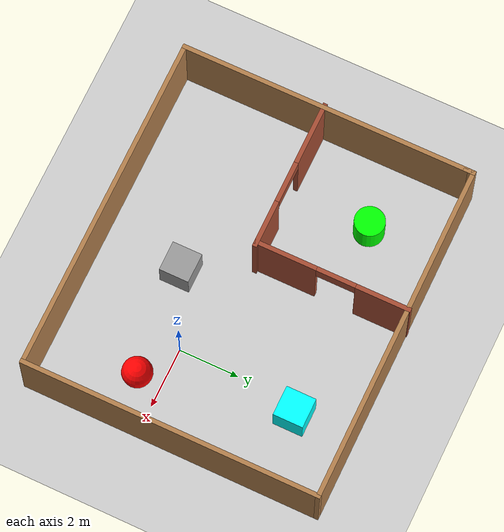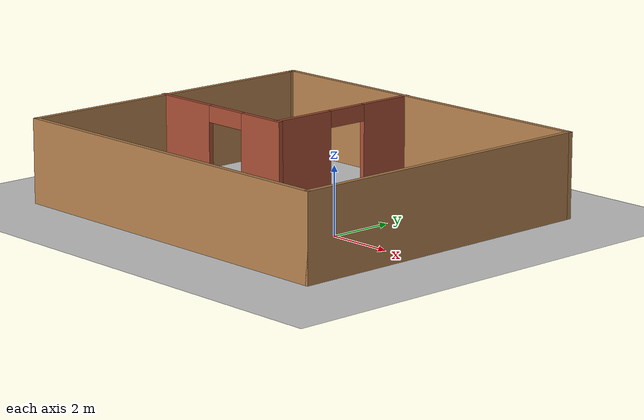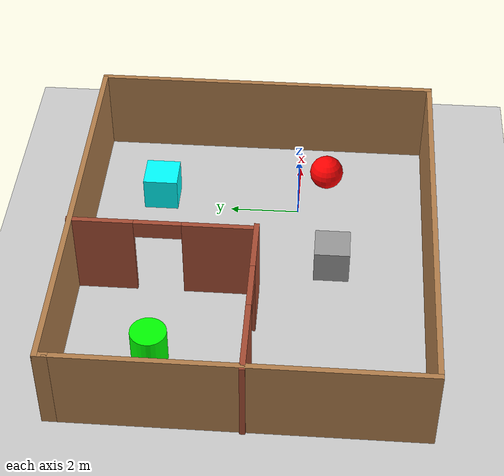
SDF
<sdf version="1.6">
 <world name="default">
  <light name="sun" type="directional">
   <pose>0 0 10 0 -0 0</pose>
   <diffuse>0.8 0.8 0.8 1</diffuse>
   <specular>0.2 0.2 0.2 1</specular>
   <attenuation>
    <range>1000</range>
    <constant>0.9</constant>
    <linear>0.01</linear>
    <quadratic>0.001</quadratic>
   </attenuation>
   <direction>-0.5 0.1 -0.9</direction>
  </light>
  <model name="ground_plane">
   <static>1</static>
   <link name="link">
    <collision name="collision">
     <geometry><plane><normal>0 0 1</normal><size>100 100</size></plane></geometry>
     <surface>
      <contact><collide_bitmask>65535</collide_bitmask></contact>
      <friction><ode><mu>100</mu><mu2>50</mu2></ode></friction>
     </surface>
    </collision>
    <visual name="visual">
     <cast_shadows>0</cast_shadows>
     <geometry><plane><normal>0 0 1</normal><size>100 100</size></plane></geometry>
     <material>
      <script><uri>file://media/materials/scripts/gazebo.material</uri><name>Gazebo/Grey</name></script>
     </material>
    </visual>
   </link>
  </model>
  <gravity>0 0 -9.8</gravity>
  <magnetic_field>6e-06 2.3e-05 -4.2e-05</magnetic_field>
  <atmosphere type="adiabatic"/>
  <physics name="default_physics" default="0" type="ode">
   <max_step_size>0.001</max_step_size>
   <real_time_factor>1</real_time_factor>
   <real_time_update_rate>1000</real_time_update_rate>
  </physics>
  <scene><ambient>0.4 0.4 0.4 1</ambient><background>0.7 0.7 0.7 1</background><shadows>1</shadows></scene>
  <spherical_coordinates>
   <surface_model>EARTH_WGS84</surface_model>
   <latitude_deg>0</latitude_deg>
   <longitude_deg>0</longitude_deg>
   <elevation>0</elevation>
   <heading_deg>0</heading_deg>
  </spherical_coordinates>
  <model name="UdacityWorldSLAM">
   <pose>-2.69032 1.1701 0 0 -0 0</pose>
   <link name="Wall_11">
    <collision name="Wall_11_Collision">
     <geometry><box><size>9.75 0.15 2.5</size></box></geometry>
     <pose>0 0 1.25 0 -0 0</pose>
    </collision>
    <visual name="Wall_11_Visual">
     <pose>0 0 1.25 0 -0 0</pose>
     <geometry><box><size>9.75 0.15 2.5</size></box></geometry>
     <material>
      <script><uri>file://media/materials/scripts/gazebo.material</uri><name>Gazebo/Wood</name></script>
      <ambient>1 1 1 1</ambient>
     </material>
     <meta><layer>0</layer></meta>
    </visual>
    <pose>-5.64538 -0.136879 0 0 0 -1.5708</pose>
   </link>
   <link name="Wall_12">
    <collision name="Wall_12_Collision">
     <geometry><box><size>11.5 0.15 2.5</size></box></geometry>
     <pose>0 0 1.25 0 -0 0</pose>
    </collision>
    <visual name="Wall_12_Visual">
     <pose>0 0 1.25 0 -0 0</pose>
     <geometry><box><size>11.5 0.15 2.5</size></box></geometry>
     <material>
      <script><uri>file://media/materials/scripts/gazebo.material</uri><name>Gazebo/Wood</name></script>
      <ambient>1 1 1 1</ambient>
     </material>
     <meta><layer>0</layer></meta>
    </visual>
    <pose>0.029622 -4.93688 0 0 -0 0</pose>
   </link>
   <link name="Wall_13">
    <collision name="Wall_13_Collision">
     <geometry><box><size>10 0.15 2.5</size></box></geometry>
     <pose>0 0 1.25 0 -0 0</pose>
    </collision>
    <visual name="Wall_13_Visual">
     <pose>0 0 1.25 0 -0 0</pose>
     <geometry><box><size>10 0.15 2.5</size></box></geometry>
     <material>
      <script><uri>file://media/materials/scripts/gazebo.material</uri><name>Gazebo/Wood</name></script>
      <ambient>1 1 1 1</ambient>
     </material>
     <meta><layer>0</layer></meta>
    </visual>
    <pose>5.70462 -0.011879 0 0 -0 1.5708</pose>
   </link>
   <link name="Wall_14">
    <collision name="Wall_14_Collision">
     <geometry><box><size>11.5 0.15 2.5</size></box></geometry>
     <pose>0 0 1.25 0 -0 0</pose>
    </collision>
    <visual name="Wall_14_Visual">
     <pose>0 0 1.25 0 -0 0</pose>
     <geometry><box><size>11.5 0.15 2.5</size></box></geometry>
     <material>
      <script><uri>file://media/materials/scripts/gazebo.material</uri><name>Gazebo/Wood</name></script>
      <ambient>1 1 1 1</ambient>
     </material>
     <meta><layer>0</layer></meta>
    </visual>
    <pose>0.029622 4.91312 0 0 -0 3.14159</pose>
   </link>
   <link name="Wall_15">
    <collision name="Wall_15_Collision">
     <geometry><box><size>0.4 0.15 2.5</size></box></geometry>
     <pose>0 0 1.25 0 -0 0</pose>
    </collision>
    <visual name="Wall_15_Visual">
     <pose>0 0 1.25 0 -0 0</pose>
     <geometry><box><size>0.4 0.15 2.5</size></box></geometry>
     <material>
      <script><uri>file://media/materials/scripts/gazebo.material</uri><name>Gazebo/Wood</name></script>
      <ambient>1 1 1 1</ambient>
     </material>
     <meta><layer>0</layer></meta>
    </visual>
    <pose>-5.64538 4.78812 0 0 0 -1.5708</pose>
   </link>
   <link name="Wall_17">
    <pose>-0.76337 2.38688 0 0 0 -1.5708</pose>
    <visual name="Wall_17_Visual_0">
     <pose>-1.70606 0 1.25 0 -0 0</pose>
     <geometry><box><size>1.83787 0.15 2.5</size></box></geometry>
     <material>
      <script><uri>file://media/materials/scripts/gazebo.material</uri><name>Gazebo/Bricks</name></script>
      <ambient>1 1 1 1</ambient>
     </material>
     <meta><layer>0</layer></meta>
    </visual>
    <collision name="Wall_17_Collision_0">
     <geometry><box><size>1.83787 0.15 2.5</size></box></geometry>
     <pose>-1.70606 0 1.25 0 -0 0</pose>
    </collision>
    <visual name="Wall_17_Visual_1">
     <pose>1.57425 0 1.25 0 -0 0</pose>
     <geometry><box><size>2.10149 0.15 2.5</size></box></geometry>
     <material>
      <script><uri>file://media/materials/scripts/gazebo.material</uri><name>Gazebo/Bricks</name></script>
      <ambient>1 1 1 1</ambient>
     </material>
     <meta><layer>0</layer></meta>
    </visual>
    <collision name="Wall_17_Collision_1">
     <geometry><box><size>2.10149 0.15 2.5</size></box></geometry>
     <pose>1.57425 0 1.25 0 -0 0</pose>
    </collision>
    <visual name="Wall_17_Visual_2">
     <pose>-0.131809 0 2.25 0 -0 0</pose>
     <geometry><box><size>1.31064 0.15 0.5</size></box></geometry>
     <material>
      <script><uri>file://media/materials/scripts/gazebo.material</uri><name>Gazebo/Bricks</name></script>
      <ambient>1 1 1 1</ambient>
     </material>
     <meta><layer>0</layer></meta>
    </visual>
    <collision name="Wall_17_Collision_2">
     <geometry><box><size>1.31064 0.15 0.5</size></box></geometry>
     <pose>-0.131809 0 2.25 0 -0 0</pose>
    </collision>
   </link>
   <link name="Wall_18">
    <pose>-3.18837 -0.163121 0 0 -0 3.14159</pose>
    <visual name="Wall_18_Visual_0">
     <pose>-1.77982 0 1.25 0 -0 0</pose>
     <geometry><box><size>1.62286 0.15 2.5</size></box></geometry>
     <material>
      <script><uri>file://media/materials/scripts/gazebo.material</uri><name>Gazebo/Bricks</name></script>
      <ambient>1 1 1 1</ambient>
     </material>
     <meta><layer>0</layer></meta>
    </visual>
    <collision name="Wall_18_Collision_0">
     <geometry><box><size>1.62286 0.15 2.5</size></box></geometry>
     <pose>-1.77982 0 1.25 0 -0 0</pose>
    </collision>
    <visual name="Wall_18_Visual_1">
     <pose>1.51237 0 1.25 0 -0 0</pose>
     <geometry><box><size>2.15776 0.15 2.5</size></box></geometry>
     <material>
      <script><uri>file://media/materials/scripts/gazebo.material</uri><name>Gazebo/Bricks</name></script>
      <ambient>1 1 1 1</ambient>
     </material>
     <meta><layer>0</layer></meta>
    </visual>
    <collision name="Wall_18_Collision_1">
     <geometry><box><size>2.15776 0.15 2.5</size></box></geometry>
     <pose>1.51237 0 1.25 0 -0 0</pose>
    </collision>
    <visual name="Wall_18_Visual_2">
     <pose>-0.267452 0 2.25 0 -0 0</pose>
     <geometry><box><size>1.40189 0.15 0.5</size></box></geometry>
     <material>
      <script><uri>file://media/materials/scripts/gazebo.material</uri><name>Gazebo/Bricks</name></script>
      <ambient>1 1 1 1</ambient>
     </material>
     <meta><layer>0</layer></meta>
    </visual>
    <collision name="Wall_18_Collision_2">
     <geometry><box><size>1.40189 0.15 0.5</size></box></geometry>
     <pose>-0.267452 0 2.25 0 -0 0</pose>
    </collision>
   </link>
   <static>1</static>
  </model>
  <model name="model">
   <link name="link_0">
    <pose>-0.667525 -2.54387 0 0 -0 0</pose>
    <inertial>
     <mass>1</mass>
     <inertia>
      <ixx>0.166667</ixx>
      <ixy>0</ixy>
      <ixz>0</ixz>
      <iyy>0.166667</iyy>
      <iyz>0</iyz>
      <izz>0.166667</izz>
     </inertia>
    </inertial>
    <visual name="visual">
     <geometry><box><size>1 1 1</size></box></geometry>
     <material>
      <lighting>1</lighting>
      <script><uri>file://media/materials/scripts/gazebo.material</uri><name>Gazebo/Grey</name></script>
      <shader type="pixel"/>
      <ambient>0.3 0.3 0.3 1</ambient>
      <diffuse>0.7 0.7 0.7 1</diffuse>
      <specular>0.01 0.01 0.01 1</specular>
      <emissive>0 0 0 1</emissive>
     </material>
    </visual>
    <collision name="collision">
     <geometry><box><size>1 1 1</size></box></geometry>
     <surface>
      <friction>
       <ode><mu>1</mu><mu2>1</mu2><fdir1>0 0 0</fdir1><slip1>0</slip1><slip2>0</slip2></ode>
       <torsional>
        <coefficient>1</coefficient>
        <patch_radius>0</patch_radius>
        <surface_radius>0</surface_radius>
        <use_patch_radius>1</use_patch_radius>
        <ode><slip>0</slip></ode>
       </torsional>
      </friction>
      <bounce><restitution_coefficient>0</restitution_coefficient><threshold>1e+06</threshold></bounce>
      <contact>
       <collide_without_contact>0</collide_without_contact>
       <collide_without_contact_bitmask>1</collide_without_contact_bitmask>
       <collide_bitmask>1</collide_bitmask>
       <ode>
        <soft_cfm>0</soft_cfm>
        <soft_erp>0.2</soft_erp>
        <kp>1e+13</kp>
        <kd>1</kd>
        <max_vel>0.01</max_vel>
        <min_depth>0</min_depth>
       </ode>
       <bullet>
        <split_impulse>1</split_impulse>
        <split_impulse_penetration_threshold>-0.01</split_impulse_penetration_threshold>
        <soft_cfm>0</soft_cfm>
        <soft_erp>0.2</soft_erp>
        <kp>1e+13</kp>
        <kd>1</kd>
       </bullet>
      </contact>
     </surface>
    </collision>
   </link>
   <link name="link_1">
    <pose>2.06585 2.62417 0 0 -0 0</pose>
    <inertial>
     <mass>1</mass>
     <inertia>
      <ixx>0.166667</ixx>
      <ixy>0</ixy>
      <ixz>0</ixz>
      <iyy>0.166667</iyy>
      <iyz>0</iyz>
      <izz>0.166667</izz>
     </inertia>
    </inertial>
    <visual name="visual">
     <geometry><box><size>1 1 1</size></box></geometry>
     <material>
      <lighting>1</lighting>
      <script><uri>file://media/materials/scripts/gazebo.material</uri><name>Gazebo/Grey</name></script>
      <shader type="pixel"><normal_map>__default__</normal_map></shader>
      <ambient>0 1 1 1</ambient>
      <diffuse>0 1 1 1</diffuse>
      <specular>0 1 1 1</specular>
      <emissive>0 1 1 1</emissive>
     </material>
    </visual>
    <collision name="collision">
     <geometry><box><size>1 1 1</size></box></geometry>
     <surface>
      <friction>
       <ode><mu>1</mu><mu2>1</mu2><fdir1>0 0 0</fdir1><slip1>0</slip1><slip2>0</slip2></ode>
       <torsional>
        <coefficient>1</coefficient>
        <patch_radius>0</patch_radius>
        <surface_radius>0</surface_radius>
        <use_patch_radius>1</use_patch_radius>
        <ode><slip>0</slip></ode>
       </torsional>
      </friction>
      <bounce><restitution_coefficient>0</restitution_coefficient><threshold>1e+06</threshold></bounce>
      <contact>
       <collide_without_contact>0</collide_without_contact>
       <collide_without_contact_bitmask>1</collide_without_contact_bitmask>
       <collide_bitmask>1</collide_bitmask>
       <ode>
        <soft_cfm>0</soft_cfm>
        <soft_erp>0.2</soft_erp>
        <kp>1e+13</kp>
        <kd>1</kd>
        <max_vel>0.01</max_vel>
        <min_depth>0</min_depth>
       </ode>
       <bullet>
        <split_impulse>1</split_impulse>
        <split_impulse_penetration_threshold>-0.01</split_impulse_penetration_threshold>
        <soft_cfm>0</soft_cfm>
        <soft_erp>0.2</soft_erp>
        <kp>1e+13</kp>
        <kd>1</kd>
       </bullet>
      </contact>
     </surface>
    </collision>
   </link>
   <link name="link_2">
    <pose>-4.38159 2.20139 0 0 -0 0</pose>
    <inertial>
     <mass>1</mass>
     <inertia><ixx>0.145833</ixx><ixy>0</ixy><ixz>0</ixz><iyy>0.145833</iyy><iyz>0</iyz><izz>0.125</izz></inertia>
    </inertial>
    <visual name="visual">
     <geometry><cylinder><radius>0.5</radius><length>1</length></cylinder></geometry>
     <material>
      <lighting>1</lighting>
      <script><uri>file://media/materials/scripts/gazebo.material</uri><name>Gazebo/Grey</name></script>
      <shader type="pixel"><normal_map>__default__</normal_map></shader>
      <ambient>0 1 0 1</ambient>
      <diffuse>0 1 0 1</diffuse>
      <specular>0 1 0 1</specular>
      <emissive>0 1 0 1</emissive>
     </material>
    </visual>
    <collision name="collision">
     <geometry><cylinder><radius>0.5</radius><length>1</length></cylinder></geometry>
     <surface>
      <friction>
       <ode><mu>1</mu><mu2>1</mu2><fdir1>0 0 0</fdir1><slip1>0</slip1><slip2>0</slip2></ode>
       <torsional>
        <coefficient>1</coefficient>
        <patch_radius>0</patch_radius>
        <surface_radius>0</surface_radius>
        <use_patch_radius>1</use_patch_radius>
        <ode><slip>0</slip></ode>
       </torsional>
      </friction>
      <bounce><restitution_coefficient>0</restitution_coefficient><threshold>1e+06</threshold></bounce>
      <contact>
       <collide_without_contact>0</collide_without_contact>
       <collide_without_contact_bitmask>1</collide_without_contact_bitmask>
       <collide_bitmask>1</collide_bitmask>
       <ode>
        <soft_cfm>0</soft_cfm>
        <soft_erp>0.2</soft_erp>
        <kp>1e+13</kp>
        <kd>1</kd>
        <max_vel>0.01</max_vel>
        <min_depth>0</min_depth>
       </ode>
       <bullet>
        <split_impulse>1</split_impulse>
        <split_impulse_penetration_threshold>-0.01</split_impulse_penetration_threshold>
        <soft_cfm>0</soft_cfm>
        <soft_erp>0.2</soft_erp>
        <kp>1e+13</kp>
        <kd>1</kd>
       </bullet>
      </contact>
     </surface>
    </collision>
   </link>
   <link name="link_4">
    <pose>2.98327 -2.28168 0 0 -0 0</pose>
    <inertial>
     <mass>1</mass>
     <inertia><ixx>0.1</ixx><ixy>0</ixy><ixz>0</ixz><iyy>0.1</iyy><iyz>0</iyz><izz>0.1</izz></inertia>
    </inertial>
    <visual name="visual">
     <geometry><sphere><radius>0.5</radius></sphere></geometry>
     <material>
      <lighting>1</lighting>
      <script><uri>file://media/materials/scripts/gazebo.material</uri><name>Gazebo/Grey</name></script>
      <shader type="pixel"><normal_map>__default__</normal_map></shader>
      <ambient>1 0 0 1</ambient>
      <diffuse>1 0 0 1</diffuse>
      <specular>1 0 0 1</specular>
      <emissive>1 0 0 1</emissive>
     </material>
    </visual>
    <collision name="collision">
     <geometry><sphere><radius>0.5</radius></sphere></geometry>
     <surface>
      <friction>
       <ode><mu>1</mu><mu2>1</mu2><fdir1>0 0 0</fdir1><slip1>0</slip1><slip2>0</slip2></ode>
       <torsional>
        <coefficient>1</coefficient>
        <patch_radius>0</patch_radius>
        <surface_radius>0</surface_radius>
        <use_patch_radius>1</use_patch_radius>
        <ode><slip>0</slip></ode>
       </torsional>
      </friction>
      <bounce><restitution_coefficient>0</restitution_coefficient><threshold>1e+06</threshold></bounce>
      <contact>
       <collide_without_contact>0</collide_without_contact>
       <collide_without_contact_bitmask>1</collide_without_contact_bitmask>
       <collide_bitmask>1</collide_bitmask>
       <ode>
        <soft_cfm>0</soft_cfm>
        <soft_erp>0.2</soft_erp>
        <kp>1e+13</kp>
        <kd>1</kd>
        <max_vel>0.01</max_vel>
        <min_depth>0</min_depth>
       </ode>
       <bullet>
        <split_impulse>1</split_impulse>
        <split_impulse_penetration_threshold>-0.01</split_impulse_penetration_threshold>
        <soft_cfm>0</soft_cfm>
        <soft_erp>0.2</soft_erp>
        <kp>1e+13</kp>
        <kd>1</kd>
       </bullet>
      </contact>
     </surface>
    </collision>
   </link>
   <static>0</static>
   <pose>-1.66248 1.48033 0.5 0 -0 0</pose>
  </model>
 </world>
</sdf>
